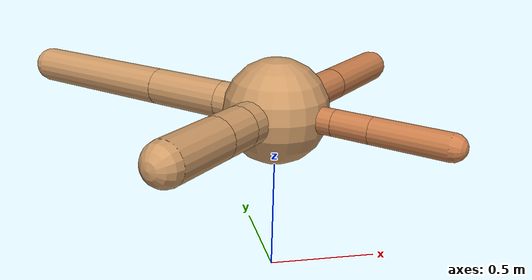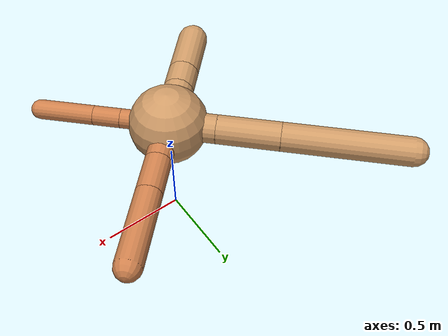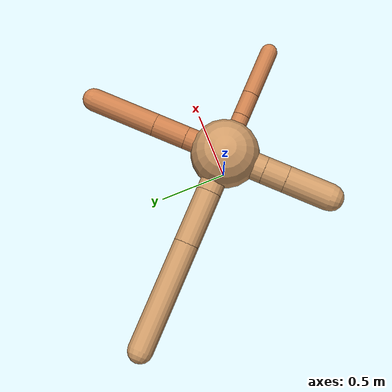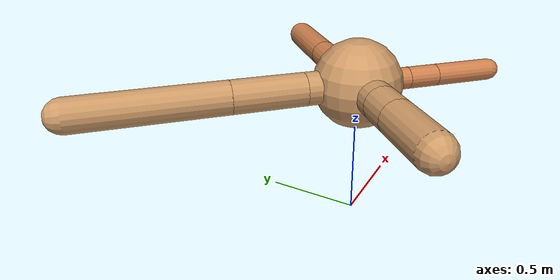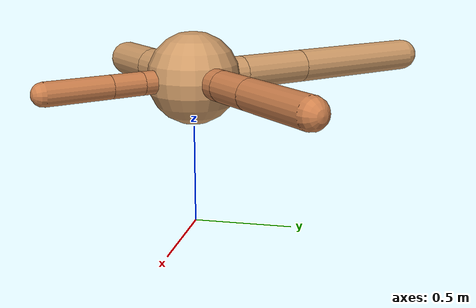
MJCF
<?xml version="1.0" ?>
<mujoco model="ant">

	<compiler angle="degree" coordinate="local" inertiafromgeom="true"/>

	<option integrator="RK4" timestep="0.01"/>

	<custom>

		<numeric data="0.0 0.0 0.55 1.0 0.0 0.0 0.0 0.0 1.0 0.0 -1.0 0.0 -1.0 0.0 1.0" name="init_qpos"/>

	</custom>

	<default>

		<joint armature="1" damping="1" limited="true"/>

		<geom conaffinity="0" condim="3" density="5.0" friction="1.5 0.1 0.1" margin="0.01" rgba="0.8 0.6 0.4 1"/>

	</default>

	<worldbody>

		<body name="torso" pos="0 0 0.75">

			<geom name="torso_geom" pos="0 0 0" size="0.232915953785665" type="sphere"/>

			<!--joint armature="0" damping="0" limited="false" margin="0.01" name="root" pos="0 0 0" type="free"/-->

			<body name="front_left_leg" pos="0 0 0">

				<geom fromto="0 0 0 0.2 0.2 0" name="aux_1_geom" size="0.07725496251035222" type="capsule" rgba=".8 .5 .3 1"/>

				<body name="aux_1" pos="0.2 0.2 0">

					<joint axis="0 0 1" name="hip_1" pos="0.0 0.0 0.0" range="-40 40" type="hinge"/>

					<geom fromto="0 0 0 0.15977661257275974 0.15977661257275974 0" name="left_leg_geom" size="0.07725496251035222" type="capsule" rgba=".8 .5 .3 1"/>

					<body pos="0.15977661257275974 0.15977661257275974 0" name="front_left_foot">

						<joint axis="-1 1 0" name="ankle_1" pos="0.0 0.0 0.0" range="30 100" type="hinge"/>

						<geom fromto="0 0 0 0.3195532251455195 0.3195532251455195 0" name="left_ankle_geom" size="0.07725496251035222" type="capsule" rgba=".8 .5 .3 1"/>

					</body>

				</body>

			</body>

			<body name="front_right_leg" pos="0 0 0">

				<geom fromto="0 0 0 -0.2 0.2 0" name="aux_2_geom" size="0.08556147614330019" type="capsule"/>

				<body name="aux_2" pos="-0.2 0.2 0">

					<joint axis="0 0 1" name="hip_2" pos="0.0 0.0 0.0" range="-40 40" type="hinge"/>

					<geom fromto="0 0 0 -0.2640838080731482 0.2640838080731482 0" name="right_leg_geom" size="0.08556147614330019" type="capsule"/>

					<body pos="-0.2640838080731482 0.2640838080731482 0" name="front_right_foot">

						<joint axis="1 1 0" name="ankle_2" pos="0.0 0.0 0.0" range="-100 -30" type="hinge"/>

						<geom fromto="0 0 0 -0.5281676161462964 0.5281676161462964 0" name="right_ankle_geom" size="0.08556147614330019" type="capsule"/>

					</body>

				</body>

			</body>

			<body name="left_back_leg" pos="0 0 0">

				<geom fromto="0 0 0 -0.2 -0.2 0" name="aux_3_geom" size="0.09324331749256834" type="capsule"/>

				<body name="aux_3" pos="-0.2 -0.2 0">

					<joint axis="0 0 1" name="hip_3" pos="0.0 0.0 0.0" range="-40 40" type="hinge"/>

					<geom fromto="0 0 0 -0.11126743685374932 -0.11126743685374932 0" name="back_leg_geom" size="0.09324331749256834" type="capsule"/>

					<body pos="-0.11126743685374932 -0.11126743685374932 0" name="left_back_foot">

						<joint axis="-1 1 0" name="ankle_3" pos="0.0 0.0 0.0" range="-100 -30" type="hinge"/>

						<geom fromto="0 0 0 -0.22253487370749864 -0.22253487370749864 0" name="third_ankle_geom" size="0.09324331749256834" type="capsule"/>

					</body>

				</body>

			</body>

			<body name="right_back_leg" pos="0 0 0">

				<geom fromto="0 0 0 0.2 -0.2 0" name="aux_4_geom" size="0.057687317000965965" type="capsule" rgba=".8 .5 .3 1"/>

				<body name="aux_4" pos="0.2 -0.2 0">

					<joint axis="0 0 1" name="hip_4" pos="0.0 0.0 0.0" range="-40 40" type="hinge"/>

					<geom fromto="0 0 0 0.11471196534960902 -0.11471196534960902 0" name="rightback_leg_geom" size="0.057687317000965965" type="capsule" rgba=".8 .5 .3 1"/>

					<body pos="0.11471196534960902 -0.11471196534960902 0" name="right_back_foot">

						<joint axis="1 1 0" name="ankle_4" pos="0.0 0.0 0.0" range="30 100" type="hinge"/>

						<geom fromto="0 0 0 0.22942393069921804 -0.22942393069921804 0" name="fourth_ankle_geom" size="0.057687317000965965" type="capsule" rgba=".8 .5 .3 1"/>

					</body>

				</body>

			</body>

		</body>

	</worldbody>

	<actuator>

		<motor ctrllimited="true" ctrlrange="-1.0 1.0" joint="hip_4" gear="150"/>

		<motor ctrllimited="true" ctrlrange="-1.0 1.0" joint="ankle_4" gear="150"/>

		<motor ctrllimited="true" ctrlrange="-1.0 1.0" joint="hip_1" gear="150"/>

		<motor ctrllimited="true" ctrlrange="-1.0 1.0" joint="ankle_1" gear="150"/>

		<motor ctrllimited="true" ctrlrange="-1.0 1.0" joint="hip_2" gear="150"/>

		<motor ctrllimited="true" ctrlrange="-1.0 1.0" joint="ankle_2" gear="150"/>

		<motor ctrllimited="true" ctrlrange="-1.0 1.0" joint="hip_3" gear="150"/>

		<motor ctrllimited="true" ctrlrange="-1.0 1.0" joint="ankle_3" gear="150"/>

	</actuator>

</mujoco>
